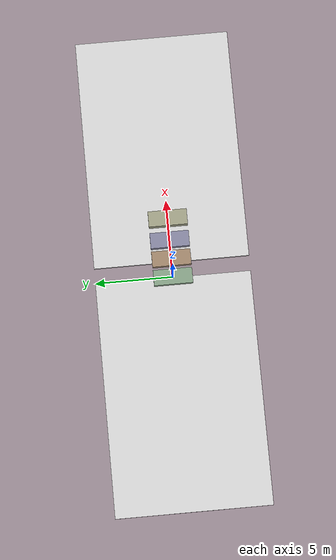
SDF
<?xml version="1.0" ?>
<sdf version="1.6">
  <world name="two_platforms_gap">
    <physics name="1ms" type="ignored">
      <max_step_size>0.001</max_step_size>
      <real_time_factor>1.0</real_time_factor>
    </physics>

    <plugin filename="gz-sim-physics-system" name="gz::sim::systems::Physics"/>
    <plugin filename="gz-sim-user-commands-system" name="gz::sim::systems::UserCommands"/>
    <plugin filename="gz-sim-scene-broadcaster-system" name="gz::sim::systems::SceneBroadcaster"/>
    <plugin filename="gz-sim-contact-system" name="gz::sim::systems::Contact"/>
    <plugin filename="gz-sim-sensors-system" name="gz::sim::systems::Sensors"/>

    <light type="directional" name="sun">
      <cast_shadows>true</cast_shadows>
      <pose>0 0 10 0 0 0</pose>
      <diffuse>0.8 0.8 0.8 1</diffuse>
      <specular>0.2 0.2 0.2 1</specular>
      <attenuation>
        <range>1000</range>
        <constant>0.9</constant>
        <linear>0.01</linear>
        <quadratic>0.001</quadratic>
      </attenuation>
      <direction>-0.5 0.1 -0.9</direction>
    </light>

    <!-- 左侧地面：x 约 -15～0，沟壑前；高摩擦便于蹬地 -->
    <model name="ground_left">
      <static>true</static>
      <pose>-7.5 0 -0.1 0 0 0</pose>
      <link name="link">
        <collision name="collision">
          <geometry>
            <box>
              <size>15 10 0.2</size>
            </box>
          </geometry>
          <surface>
            <friction>
              <ode>
                <mu>1.2</mu>
                <mu2>1.2</mu2>
              </ode>
            </friction>
          </surface>
        </collision>
        <visual name="visual">
          <geometry>
            <box>
              <size>15 10 0.2</size>
            </box>
          </geometry>
          <material>
            <ambient>0.8 0.8 0.8 1</ambient>
            <diffuse>0.8 0.8 0.8 1</diffuse>
            <specular>0.2 0.2 0.2 1</specular>
          </material>
        </visual>
      </link>
    </model>

    <!-- 右侧地面：x 约 1～16，沟壑后；高摩擦 -->
    <model name="ground_right">
      <static>true</static>
      <pose>8.5 0 -0.1 0 0 0</pose>
      <link name="link">
        <collision name="collision">
          <geometry>
            <box>
              <size>15 10 0.2</size>
            </box>
          </geometry>
          <surface>
            <friction>
              <ode>
                <mu>1.2</mu>
                <mu2>1.2</mu2>
              </ode>
            </friction>
          </surface>
        </collision>
        <visual name="visual">
          <geometry>
            <box>
              <size>15 10 0.2</size>
            </box>
          </geometry>
          <material>
            <ambient>0.8 0.8 0.8 1</ambient>
            <diffuse>0.8 0.8 0.8 1</diffuse>
            <specular>0.2 0.2 0.2 1</specular>
          </material>
        </visual>
      </link>
    </model>

    <model name="platform_1">
      <static>true</static>
      <pose>0 0 0.2 0 0 0</pose>
      <link name="link">
        <collision name="collision">
          <geometry>
            <box>
              <size>1.0 2.5 0.4</size>
            </box>
          </geometry>
          <surface>
            <friction>
              <ode>
                <mu>1.2</mu>
                <mu2>1.2</mu2>
              </ode>
            </friction>
          </surface>
        </collision>
        <visual name="visual">
          <geometry>
            <box>
              <size>1.0 2.5 0.4</size>
            </box>
          </geometry>
          <material>
            <ambient>0.5 0.6 0.5 1</ambient>
            <diffuse>0.5 0.6 0.5 1</diffuse>
            <specular>0.2 0.2 0.2 1</specular>
          </material>
        </visual>
      </link>
    </model>

    <model name="platform_2">
      <static>true</static>
      <pose>1.2 0 0.225 0 0 0</pose>
      <link name="link">
        <collision name="collision">
          <geometry>
            <box>
              <size>1.0 2.5 0.45</size>
            </box>
          </geometry>
          <surface>
            <friction>
              <ode>
                <mu>1.2</mu>
                <mu2>1.2</mu2>
              </ode>
            </friction>
          </surface>
        </collision>
        <visual name="visual">
          <geometry>
            <box>
              <size>1.0 2.5 0.45</size>
            </box>
          </geometry>
          <material>
            <ambient>0.6 0.5 0.4 1</ambient>
            <diffuse>0.6 0.5 0.4 1</diffuse>
            <specular>0.2 0.2 0.2 1</specular>
          </material>
        </visual>
      </link>
    </model>

    <model name="platform_3">
      <static>true</static>
      <pose>2.4 0 0.25 0 0 0</pose>
      <link name="link">
        <collision name="collision">
          <geometry>
            <box>
              <size>1.0 2.5 0.5</size>
            </box>
          </geometry>
          <surface>
            <friction>
              <ode>
                <mu>1.2</mu>
                <mu2>1.2</mu2>
              </ode>
            </friction>
          </surface>
        </collision>
        <visual name="visual">
          <geometry>
            <box>
              <size>1.0 2.5 0.5</size>
            </box>
          </geometry>
          <material>
            <ambient>0.5 0.5 0.6 1</ambient>
            <diffuse>0.5 0.5 0.6 1</diffuse>
            <specular>0.2 0.2 0.2 1</specular>
          </material>
        </visual>
      </link>
    </model>

    <model name="platform_4">
      <static>true</static>
      <pose>3.8 0 0.3 0 0 0</pose>
      <link name="link">
        <collision name="collision">
          <geometry>
            <box>
              <size>1.0 2.5 0.6</size>
            </box>
          </geometry>
          <surface>
            <friction>
              <ode>
                <mu>1.2</mu>
                <mu2>1.2</mu2>
              </ode>
            </friction>
          </surface>
        </collision>
        <visual name="visual">
          <geometry>
            <box>
              <size>1.0 2.5 0.6</size>
            </box>
          </geometry>
          <material>
            <ambient>0.6 0.6 0.5 1</ambient>
            <diffuse>0.6 0.6 0.5 1</diffuse>
            <specular>0.2 0.2 0.2 1</specular>
          </material>
        </visual>
      </link>
    </model>
  </world>
</sdf>
